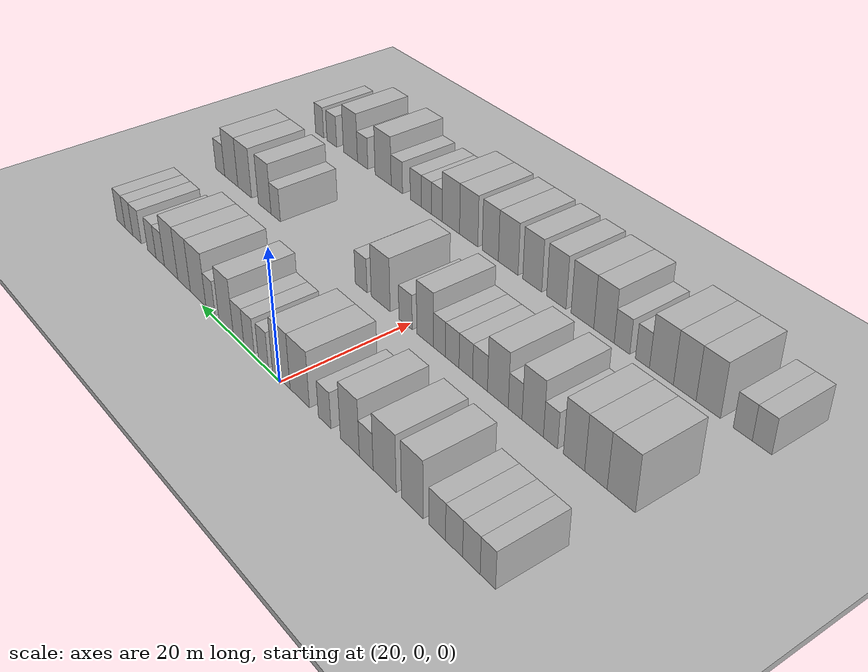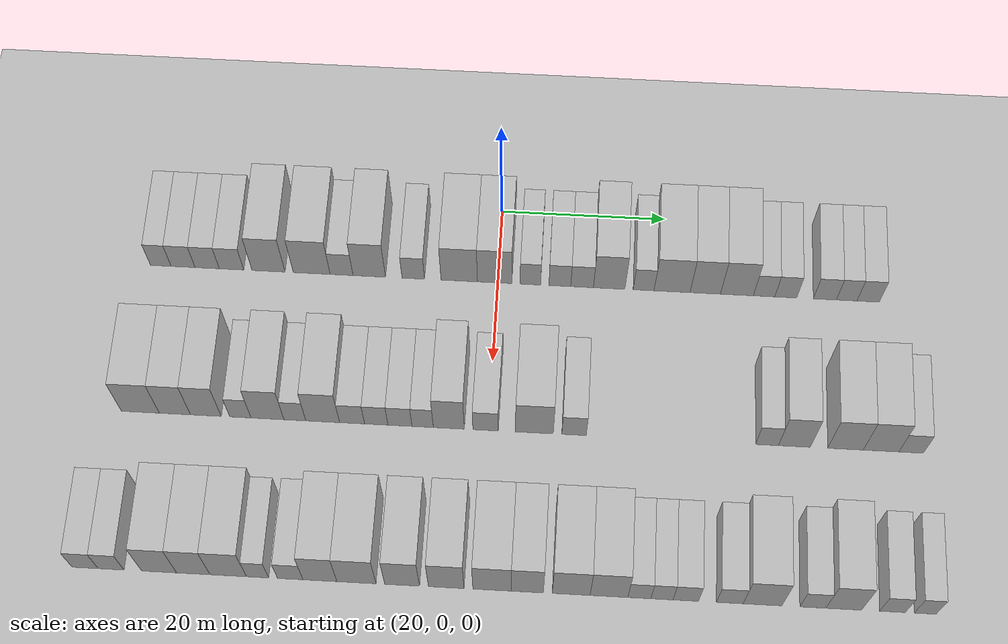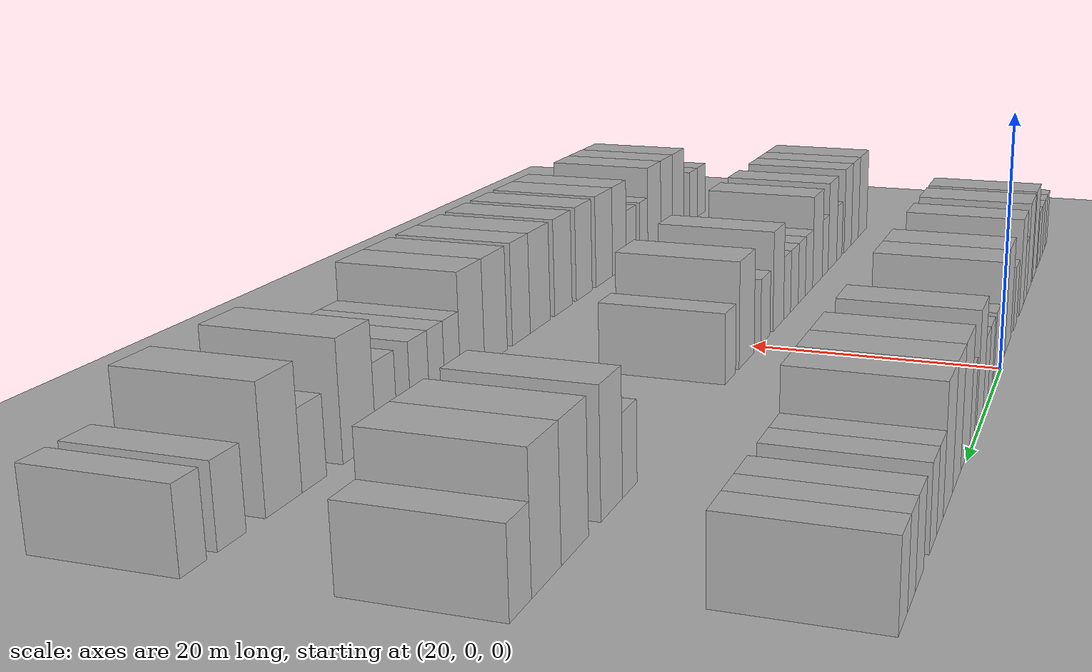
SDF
<sdf version="1.6">
 <world name="default">
  <include><name>ground_plane_1</name><uri>model://HANNAS_ground_plane</uri></include>
  <include>
   <name>ground_plane_2</name>
   <uri>model://HANNAS_ground_plane</uri>
   <pose>100 0 0  0 0 0</pose>
  </include>
  <model name="building_46">
   <static>1</static>
   <pose>25.0000 -40.8660 0 0.000000 0.000000 0.000000</pose>
   <link name="link">
    <pose>0 0 3.00 0 0 0</pose>
    <collision name="collision"><geometry><box><size>10.0000 2.5116 6.0000</size></box></geometry></collision>
    <visual name="visual">
     <cast_shadows>0</cast_shadows>
     <geometry><box><size>10.0000 2.5116 6.0000</size></box></geometry>
     <material>
      <script>
       <uri>model://HANNAS_wall/materials/scripts</uri>
       <uri>model://HANNAS_wall/materials/textures</uri>
       <name>vrc/HANNAS_wall</name>
      </script>
     </material>
    </visual>
   </link>
  </model>
  <model name="building_47">
   <static>1</static>
   <pose>25.0000 -38.1492 0 0.000000 0.000000 0.000000</pose>
   <link name="link">
    <pose>0 0 3.00 0 0 0</pose>
    <collision name="collision"><geometry><box><size>10.0000 2.9220 6.0000</size></box></geometry></collision>
    <visual name="visual">
     <cast_shadows>0</cast_shadows>
     <geometry><box><size>10.0000 2.9220 6.0000</size></box></geometry>
     <material>
      <script>
       <uri>model://HANNAS_wall/materials/scripts</uri>
       <uri>model://HANNAS_wall/materials/textures</uri>
       <name>vrc/HANNAS_wall</name>
      </script>
     </material>
    </visual>
   </link>
  </model>
  <model name="building_48">
   <static>1</static>
   <pose>25.0000 -35.2153 0 0.000000 0.000000 0.000000</pose>
   <link name="link">
    <pose>0 0 3.00 0 0 0</pose>
    <collision name="collision"><geometry><box><size>10.0000 2.9459 6.0000</size></box></geometry></collision>
    <visual name="visual">
     <cast_shadows>0</cast_shadows>
     <geometry><box><size>10.0000 2.9459 6.0000</size></box></geometry>
     <material>
      <script>
       <uri>model://HANNAS_wall/materials/scripts</uri>
       <uri>model://HANNAS_wall/materials/textures</uri>
       <name>vrc/HANNAS_wall</name>
      </script>
     </material>
    </visual>
   </link>
  </model>
  <model name="building_49">
   <static>1</static>
   <pose>25.0000 -32.2493 0 0.000000 0.000000 0.000000</pose>
   <link name="link">
    <pose>0 0 3.00 0 0 0</pose>
    <collision name="collision"><geometry><box><size>10.0000 2.9861 6.0000</size></box></geometry></collision>
    <visual name="visual">
     <cast_shadows>0</cast_shadows>
     <geometry><box><size>10.0000 2.9861 6.0000</size></box></geometry>
     <material>
      <script>
       <uri>model://HANNAS_wall/materials/scripts</uri>
       <uri>model://HANNAS_wall/materials/textures</uri>
       <name>vrc/HANNAS_wall</name>
      </script>
     </material>
    </visual>
   </link>
  </model>
  <model name="building_50">
   <static>1</static>
   <pose>25.0000 -27.7480 0 0.000000 0.000000 0.000000</pose>
   <link name="link">
    <pose>0 0 4.50 0 0 0</pose>
    <collision name="collision"><geometry><box><size>10.0000 4.0165 9.0000</size></box></geometry></collision>
    <visual name="visual">
     <cast_shadows>0</cast_shadows>
     <geometry><box><size>10.0000 4.0165 9.0000</size></box></geometry>
     <material>
      <script>
       <uri>model://HANNAS_wall/materials/scripts</uri>
       <uri>model://HANNAS_wall/materials/textures</uri>
       <name>vrc/HANNAS_wall</name>
      </script>
     </material>
    </visual>
   </link>
  </model>
  <model name="building_51">
   <static>1</static>
   <pose>25.0000 -22.5048 0 0.000000 0.000000 0.000000</pose>
   <link name="link">
    <pose>0 0 4.50 0 0 0</pose>
    <collision name="collision"><geometry><box><size>10.0000 4.4698 9.0000</size></box></geometry></collision>
    <visual name="visual">
     <cast_shadows>0</cast_shadows>
     <geometry><box><size>10.0000 4.4698 9.0000</size></box></geometry>
     <material>
      <script>
       <uri>model://HANNAS_wall/materials/scripts</uri>
       <uri>model://HANNAS_wall/materials/textures</uri>
       <name>vrc/HANNAS_wall</name>
      </script>
     </material>
    </visual>
   </link>
  </model>
  <model name="building_52">
   <static>1</static>
   <pose>25.0000 -18.8796 0 0.000000 0.000000 0.000000</pose>
   <link name="link">
    <pose>0 0 3.00 0 0 0</pose>
    <collision name="collision"><geometry><box><size>10.0000 2.7806 6.0000</size></box></geometry></collision>
    <visual name="visual">
     <cast_shadows>0</cast_shadows>
     <geometry><box><size>10.0000 2.7806 6.0000</size></box></geometry>
     <material>
      <script>
       <uri>model://HANNAS_wall/materials/scripts</uri>
       <uri>model://HANNAS_wall/materials/textures</uri>
       <name>vrc/HANNAS_wall</name>
      </script>
     </material>
    </visual>
   </link>
  </model>
  <model name="building_53">
   <static>1</static>
   <pose>25.0000 -15.5178 0 0.000000 0.000000 0.000000</pose>
   <link name="link">
    <pose>0 0 4.50 0 0 0</pose>
    <collision name="collision"><geometry><box><size>10.0000 3.9430 9.0000</size></box></geometry></collision>
    <visual name="visual">
     <cast_shadows>0</cast_shadows>
     <geometry><box><size>10.0000 3.9430 9.0000</size></box></geometry>
     <material>
      <script>
       <uri>model://HANNAS_wall/materials/scripts</uri>
       <uri>model://HANNAS_wall/materials/textures</uri>
       <name>vrc/HANNAS_wall</name>
      </script>
     </material>
    </visual>
   </link>
  </model>
  <model name="building_54">
   <static>1</static>
   <pose>25.0000 -10.1851 0 0.000000 0.000000 0.000000</pose>
   <link name="link">
    <pose>0 0 3.00 0 0 0</pose>
    <collision name="collision"><geometry><box><size>10.0000 2.7223 6.0000</size></box></geometry></collision>
    <visual name="visual">
     <cast_shadows>0</cast_shadows>
     <geometry><box><size>10.0000 2.7223 6.0000</size></box></geometry>
     <material>
      <script>
       <uri>model://HANNAS_wall/materials/scripts</uri>
       <uri>model://HANNAS_wall/materials/textures</uri>
       <name>vrc/HANNAS_wall</name>
      </script>
     </material>
    </visual>
   </link>
  </model>
  <model name="building_55">
   <static>1</static>
   <pose>25.0000 -4.6229 0 0.000000 0.000000 0.000000</pose>
   <link name="link">
    <pose>0 0 4.50 0 0 0</pose>
    <collision name="collision"><geometry><box><size>10.0000 4.4022 9.0000</size></box></geometry></collision>
    <visual name="visual">
     <cast_shadows>0</cast_shadows>
     <geometry><box><size>10.0000 4.4022 9.0000</size></box></geometry>
     <material>
      <script>
       <uri>model://HANNAS_wall/materials/scripts</uri>
       <uri>model://HANNAS_wall/materials/textures</uri>
       <name>vrc/HANNAS_wall</name>
      </script>
     </material>
    </visual>
   </link>
  </model>
  <model name="building_56">
   <static>1</static>
   <pose>25.0000 -0.3468 0 0.000000 0.000000 0.000000</pose>
   <link name="link">
    <pose>0 0 4.50 0 0 0</pose>
    <collision name="collision"><geometry><box><size>10.0000 4.1499 9.0000</size></box></geometry></collision>
    <visual name="visual">
     <cast_shadows>0</cast_shadows>
     <geometry><box><size>10.0000 4.1499 9.0000</size></box></geometry>
     <material>
      <script>
       <uri>model://HANNAS_wall/materials/scripts</uri>
       <uri>model://HANNAS_wall/materials/textures</uri>
       <name>vrc/HANNAS_wall</name>
      </script>
     </material>
    </visual>
   </link>
  </model>
  <model name="building_57">
   <static>1</static>
   <pose>25.0000 3.9664 0 0.000000 0.000000 0.000000</pose>
   <link name="link">
    <pose>0 0 3.00 0 0 0</pose>
    <collision name="collision"><geometry><box><size>10.0000 2.4766 6.0000</size></box></geometry></collision>
    <visual name="visual">
     <cast_shadows>0</cast_shadows>
     <geometry><box><size>10.0000 2.4766 6.0000</size></box></geometry>
     <material>
      <script>
       <uri>model://HANNAS_wall/materials/scripts</uri>
       <uri>model://HANNAS_wall/materials/textures</uri>
       <name>vrc/HANNAS_wall</name>
      </script>
     </material>
    </visual>
   </link>
  </model>
  <model name="building_58">
   <static>1</static>
   <pose>25.0000 7.5182 0 0.000000 0.000000 0.000000</pose>
   <link name="link">
    <pose>0 0 3.00 0 0 0</pose>
    <collision name="collision"><geometry><box><size>10.0000 2.6270 6.0000</size></box></geometry></collision>
    <visual name="visual">
     <cast_shadows>0</cast_shadows>
     <geometry><box><size>10.0000 2.6270 6.0000</size></box></geometry>
     <material>
      <script>
       <uri>model://HANNAS_wall/materials/scripts</uri>
       <uri>model://HANNAS_wall/materials/textures</uri>
       <name>vrc/HANNAS_wall</name>
      </script>
     </material>
    </visual>
   </link>
  </model>
  <model name="building_59">
   <static>1</static>
   <pose>25.0000 10.2033 0 0.000000 0.000000 0.000000</pose>
   <link name="link">
    <pose>0 0 3.00 0 0 0</pose>
    <collision name="collision"><geometry><box><size>10.0000 2.7432 6.0000</size></box></geometry></collision>
    <visual name="visual">
     <cast_shadows>0</cast_shadows>
     <geometry><box><size>10.0000 2.7432 6.0000</size></box></geometry>
     <material>
      <script>
       <uri>model://HANNAS_wall/materials/scripts</uri>
       <uri>model://HANNAS_wall/materials/textures</uri>
       <name>vrc/HANNAS_wall</name>
      </script>
     </material>
    </visual>
   </link>
  </model>
  <model name="building_60">
   <static>1</static>
   <pose>25.0000 13.4718 0 0.000000 0.000000 0.000000</pose>
   <link name="link">
    <pose>0 0 4.50 0 0 0</pose>
    <collision name="collision"><geometry><box><size>10.0000 3.7939 9.0000</size></box></geometry></collision>
    <visual name="visual">
     <cast_shadows>0</cast_shadows>
     <geometry><box><size>10.0000 3.7939 9.0000</size></box></geometry>
     <material>
      <script>
       <uri>model://HANNAS_wall/materials/scripts</uri>
       <uri>model://HANNAS_wall/materials/textures</uri>
       <name>vrc/HANNAS_wall</name>
      </script>
     </material>
    </visual>
   </link>
  </model>
  <model name="building_61">
   <static>1</static>
   <pose>25.0000 17.6209 0 0.000000 0.000000 0.000000</pose>
   <link name="link">
    <pose>0 0 3.00 0 0 0</pose>
    <collision name="collision"><geometry><box><size>10.0000 2.5042 6.0000</size></box></geometry></collision>
    <visual name="visual">
     <cast_shadows>0</cast_shadows>
     <geometry><box><size>10.0000 2.5042 6.0000</size></box></geometry>
     <material>
      <script>
       <uri>model://HANNAS_wall/materials/scripts</uri>
       <uri>model://HANNAS_wall/materials/textures</uri>
       <name>vrc/HANNAS_wall</name>
      </script>
     </material>
    </visual>
   </link>
  </model>
  <model name="building_62">
   <static>1</static>
   <pose>25.0000 21.0425 0 0.000000 0.000000 0.000000</pose>
   <link name="link">
    <pose>0 0 4.50 0 0 0</pose>
    <collision name="collision"><geometry><box><size>10.0000 4.3391 9.0000</size></box></geometry></collision>
    <visual name="visual">
     <cast_shadows>0</cast_shadows>
     <geometry><box><size>10.0000 4.3391 9.0000</size></box></geometry>
     <material>
      <script>
       <uri>model://HANNAS_wall/materials/scripts</uri>
       <uri>model://HANNAS_wall/materials/textures</uri>
       <name>vrc/HANNAS_wall</name>
      </script>
     </material>
    </visual>
   </link>
  </model>
  <model name="building_63">
   <static>1</static>
   <pose>25.0000 25.0427 0 0.000000 0.000000 0.000000</pose>
   <link name="link">
    <pose>0 0 4.50 0 0 0</pose>
    <collision name="collision"><geometry><box><size>10.0000 3.6613 9.0000</size></box></geometry></collision>
    <visual name="visual">
     <cast_shadows>0</cast_shadows>
     <geometry><box><size>10.0000 3.6613 9.0000</size></box></geometry>
     <material>
      <script>
       <uri>model://HANNAS_wall/materials/scripts</uri>
       <uri>model://HANNAS_wall/materials/textures</uri>
       <name>vrc/HANNAS_wall</name>
      </script>
     </material>
    </visual>
   </link>
  </model>
  <model name="building_64">
   <static>1</static>
   <pose>25.0000 28.8501 0 0.000000 0.000000 0.000000</pose>
   <link name="link">
    <pose>0 0 4.50 0 0 0</pose>
    <collision name="collision"><geometry><box><size>10.0000 3.9537 9.0000</size></box></geometry></collision>
    <visual name="visual">
     <cast_shadows>0</cast_shadows>
     <geometry><box><size>10.0000 3.9537 9.0000</size></box></geometry>
     <material>
      <script>
       <uri>model://HANNAS_wall/materials/scripts</uri>
       <uri>model://HANNAS_wall/materials/textures</uri>
       <name>vrc/HANNAS_wall</name>
      </script>
     </material>
    </visual>
   </link>
  </model>
  <model name="building_65">
   <static>1</static>
   <pose>25.0000 32.1144 0 0.000000 0.000000 0.000000</pose>
   <link name="link">
    <pose>0 0 3.00 0 0 0</pose>
    <collision name="collision"><geometry><box><size>10.0000 2.5749 6.0000</size></box></geometry></collision>
    <visual name="visual">
     <cast_shadows>0</cast_shadows>
     <geometry><box><size>10.0000 2.5749 6.0000</size></box></geometry>
     <material>
      <script>
       <uri>model://HANNAS_wall/materials/scripts</uri>
       <uri>model://HANNAS_wall/materials/textures</uri>
       <name>vrc/HANNAS_wall</name>
      </script>
     </material>
    </visual>
   </link>
  </model>
  <model name="building_66">
   <static>1</static>
   <pose>25.0000 34.7134 0 0.000000 0.000000 0.000000</pose>
   <link name="link">
    <pose>0 0 3.00 0 0 0</pose>
    <collision name="collision"><geometry><box><size>10.0000 2.6231 6.0000</size></box></geometry></collision>
    <visual name="visual">
     <cast_shadows>0</cast_shadows>
     <geometry><box><size>10.0000 2.6231 6.0000</size></box></geometry>
     <material>
      <script>
       <uri>model://HANNAS_wall/materials/scripts</uri>
       <uri>model://HANNAS_wall/materials/textures</uri>
       <name>vrc/HANNAS_wall</name>
      </script>
     </material>
    </visual>
   </link>
  </model>
  <model name="building_67">
   <static>1</static>
   <pose>25.0000 39.4012 0 0.000000 0.000000 0.000000</pose>
   <link name="link">
    <pose>0 0 3.00 0 0 0</pose>
    <collision name="collision"><geometry><box><size>10.0000 2.7525 6.0000</size></box></geometry></collision>
    <visual name="visual">
     <cast_shadows>0</cast_shadows>
     <geometry><box><size>10.0000 2.7525 6.0000</size></box></geometry>
     <material>
      <script>
       <uri>model://HANNAS_wall/materials/scripts</uri>
       <uri>model://HANNAS_wall/materials/textures</uri>
       <name>vrc/HANNAS_wall</name>
      </script>
     </material>
    </visual>
   </link>
  </model>
  <model name="building_68">
   <static>1</static>
   <pose>25.0000 42.0086 0 0.000000 0.000000 0.000000</pose>
   <link name="link">
    <pose>0 0 3.00 0 0 0</pose>
    <collision name="collision"><geometry><box><size>10.0000 2.4623 6.0000</size></box></geometry></collision>
    <visual name="visual">
     <cast_shadows>0</cast_shadows>
     <geometry><box><size>10.0000 2.4623 6.0000</size></box></geometry>
     <material>
      <script>
       <uri>model://HANNAS_wall/materials/scripts</uri>
       <uri>model://HANNAS_wall/materials/textures</uri>
       <name>vrc/HANNAS_wall</name>
      </script>
     </material>
    </visual>
   </link>
  </model>
  <model name="building_69">
   <static>1</static>
   <pose>25.0000 44.5900 0 0.000000 0.000000 0.000000</pose>
   <link name="link">
    <pose>0 0 3.00 0 0 0</pose>
    <collision name="collision"><geometry><box><size>10.0000 2.7006 6.0000</size></box></geometry></collision>
    <visual name="visual">
     <cast_shadows>0</cast_shadows>
     <geometry><box><size>10.0000 2.7006 6.0000</size></box></geometry>
     <material>
      <script>
       <uri>model://HANNAS_wall/materials/scripts</uri>
       <uri>model://HANNAS_wall/materials/textures</uri>
       <name>vrc/HANNAS_wall</name>
      </script>
     </material>
    </visual>
   </link>
  </model>
  <model name="building_158">
   <static>1</static>
   <pose>44.0000 -40.7082 0 0.000000 0.000000 0.000000</pose>
   <link name="link">
    <pose>0 0 4.50 0 0 0</pose>
    <collision name="collision"><geometry><box><size>10.0000 4.4553 9.0000</size></box></geometry></collision>
    <visual name="visual">
     <cast_shadows>0</cast_shadows>
     <geometry><box><size>10.0000 4.4553 9.0000</size></box></geometry>
     <material>
      <script>
       <uri>model://HANNAS_wall/materials/scripts</uri>
       <uri>model://HANNAS_wall/materials/textures</uri>
       <name>vrc/HANNAS_wall</name>
      </script>
     </material>
    </visual>
   </link>
  </model>
  <model name="building_159">
   <static>1</static>
   <pose>44.0000 -36.6401 0 0.000000 0.000000 0.000000</pose>
   <link name="link">
    <pose>0 0 4.50 0 0 0</pose>
    <collision name="collision"><geometry><box><size>10.0000 3.6810 9.0000</size></box></geometry></collision>
    <visual name="visual">
     <cast_shadows>0</cast_shadows>
     <geometry><box><size>10.0000 3.6810 9.0000</size></box></geometry>
     <material>
      <script>
       <uri>model://HANNAS_wall/materials/scripts</uri>
       <uri>model://HANNAS_wall/materials/textures</uri>
       <name>vrc/HANNAS_wall</name>
      </script>
     </material>
    </visual>
   </link>
  </model>
  <model name="building_160">
   <static>1</static>
   <pose>44.0000 -32.9985 0 0.000000 0.000000 0.000000</pose>
   <link name="link">
    <pose>0 0 4.50 0 0 0</pose>
    <collision name="collision"><geometry><box><size>10.0000 3.6022 9.0000</size></box></geometry></collision>
    <visual name="visual">
     <cast_shadows>0</cast_shadows>
     <geometry><box><size>10.0000 3.6022 9.0000</size></box></geometry>
     <material>
      <script>
       <uri>model://HANNAS_wall/materials/scripts</uri>
       <uri>model://HANNAS_wall/materials/textures</uri>
       <name>vrc/HANNAS_wall</name>
      </script>
     </material>
    </visual>
   </link>
  </model>
  <model name="building_161">
   <static>1</static>
   <pose>44.0000 -28.9535 0 0.000000 0.000000 0.000000</pose>
   <link name="link">
    <pose>0 0 3.00 0 0 0</pose>
    <collision name="collision"><geometry><box><size>10.0000 2.4878 6.0000</size></box></geometry></collision>
    <visual name="visual">
     <cast_shadows>0</cast_shadows>
     <geometry><box><size>10.0000 2.4878 6.0000</size></box></geometry>
     <material>
      <script>
       <uri>model://HANNAS_wall/materials/scripts</uri>
       <uri>model://HANNAS_wall/materials/textures</uri>
       <name>vrc/HANNAS_wall</name>
      </script>
     </material>
    </visual>
   </link>
  </model>
  <model name="building_162">
   <static>1</static>
   <pose>44.0000 -25.7793 0 0.000000 0.000000 0.000000</pose>
   <link name="link">
    <pose>0 0 4.50 0 0 0</pose>
    <collision name="collision"><geometry><box><size>10.0000 3.8607 9.0000</size></box></geometry></collision>
    <visual name="visual">
     <cast_shadows>0</cast_shadows>
     <geometry><box><size>10.0000 3.8607 9.0000</size></box></geometry>
     <material>
      <script>
       <uri>model://HANNAS_wall/materials/scripts</uri>
       <uri>model://HANNAS_wall/materials/textures</uri>
       <name>vrc/HANNAS_wall</name>
      </script>
     </material>
    </visual>
   </link>
  </model>
  <model name="building_163">
   <static>1</static>
   <pose>44.0000 -22.5672 0 0.000000 0.000000 0.000000</pose>
   <link name="link">
    <pose>0 0 3.00 0 0 0</pose>
    <collision name="collision"><geometry><box><size>10.0000 2.5634 6.0000</size></box></geometry></collision>
    <visual name="visual">
     <cast_shadows>0</cast_shadows>
     <geometry><box><size>10.0000 2.5634 6.0000</size></box></geometry>
     <material>
      <script>
       <uri>model://HANNAS_wall/materials/scripts</uri>
       <uri>model://HANNAS_wall/materials/textures</uri>
       <name>vrc/HANNAS_wall</name>
      </script>
     </material>
    </visual>
   </link>
  </model>
  <model name="building_164">
   <static>1</static>
   <pose>44.0000 -19.3072 0 0.000000 0.000000 0.000000</pose>
   <link name="link">
    <pose>0 0 4.50 0 0 0</pose>
    <collision name="collision"><geometry><box><size>10.0000 3.9565 9.0000</size></box></geometry></collision>
    <visual name="visual">
     <cast_shadows>0</cast_shadows>
     <geometry><box><size>10.0000 3.9565 9.0000</size></box></geometry>
     <material>
      <script>
       <uri>model://HANNAS_wall/materials/scripts</uri>
       <uri>model://HANNAS_wall/materials/textures</uri>
       <name>vrc/HANNAS_wall</name>
      </script>
     </material>
    </visual>
   </link>
  </model>
  <model name="building_165">
   <static>1</static>
   <pose>44.0000 -15.8691 0 0.000000 0.000000 0.000000</pose>
   <link name="link">
    <pose>0 0 3.00 0 0 0</pose>
    <collision name="collision"><geometry><box><size>10.0000 2.9197 6.0000</size></box></geometry></collision>
    <visual name="visual">
     <cast_shadows>0</cast_shadows>
     <geometry><box><size>10.0000 2.9197 6.0000</size></box></geometry>
     <material>
      <script>
       <uri>model://HANNAS_wall/materials/scripts</uri>
       <uri>model://HANNAS_wall/materials/textures</uri>
       <name>vrc/HANNAS_wall</name>
      </script>
     </material>
    </visual>
   </link>
  </model>
  <model name="building_166">
   <static>1</static>
   <pose>44.0000 -13.0458 0 0.000000 0.000000 0.000000</pose>
   <link name="link">
    <pose>0 0 3.00 0 0 0</pose>
    <collision name="collision"><geometry><box><size>10.0000 2.7271 6.0000</size></box></geometry></collision>
    <visual name="visual">
     <cast_shadows>0</cast_shadows>
     <geometry><box><size>10.0000 2.7271 6.0000</size></box></geometry>
     <material>
      <script>
       <uri>model://HANNAS_wall/materials/scripts</uri>
       <uri>model://HANNAS_wall/materials/textures</uri>
       <name>vrc/HANNAS_wall</name>
      </script>
     </material>
    </visual>
   </link>
  </model>
  <model name="building_167">
   <static>1</static>
   <pose>44.0000 -10.2778 0 0.000000 0.000000 0.000000</pose>
   <link name="link">
    <pose>0 0 3.00 0 0 0</pose>
    <collision name="collision"><geometry><box><size>10.0000 2.8089 6.0000</size></box></geometry></collision>
    <visual name="visual">
     <cast_shadows>0</cast_shadows>
     <geometry><box><size>10.0000 2.8089 6.0000</size></box></geometry>
     <material>
      <script>
       <uri>model://HANNAS_wall/materials/scripts</uri>
       <uri>model://HANNAS_wall/materials/textures</uri>
       <name>vrc/HANNAS_wall</name>
      </script>
     </material>
    </visual>
   </link>
  </model>
  <model name="building_168">
   <static>1</static>
   <pose>44.0000 -7.6267 0 0.000000 0.000000 0.000000</pose>
   <link name="link">
    <pose>0 0 3.00 0 0 0</pose>
    <collision name="collision"><geometry><box><size>10.0000 2.4932 6.0000</size></box></geometry></collision>
    <visual name="visual">
     <cast_shadows>0</cast_shadows>
     <geometry><box><size>10.0000 2.4932 6.0000</size></box></geometry>
     <material>
      <script>
       <uri>model://HANNAS_wall/materials/scripts</uri>
       <uri>model://HANNAS_wall/materials/textures</uri>
       <name>vrc/HANNAS_wall</name>
      </script>
     </material>
    </visual>
   </link>
  </model>
  <model name="building_169">
   <static>1</static>
   <pose>44.0000 -4.5736 0 0.000000 0.000000 0.000000</pose>
   <link name="link">
    <pose>0 0 4.50 0 0 0</pose>
    <collision name="collision"><geometry><box><size>10.0000 3.6130 9.0000</size></box></geometry></collision>
    <visual name="visual">
     <cast_shadows>0</cast_shadows>
     <geometry><box><size>10.0000 3.6130 9.0000</size></box></geometry>
     <material>
      <script>
       <uri>model://HANNAS_wall/materials/scripts</uri>
       <uri>model://HANNAS_wall/materials/textures</uri>
       <name>vrc/HANNAS_wall</name>
      </script>
     </material>
    </visual>
   </link>
  </model>
  <model name="building_170">
   <static>1</static>
   <pose>44.0000 -0.2909 0 0.000000 0.000000 0.000000</pose>
   <link name="link">
    <pose>0 0 3.00 0 0 0</pose>
    <collision name="collision"><geometry><box><size>10.0000 2.9525 6.0000</size></box></geometry></collision>
    <visual name="visual">
     <cast_shadows>0</cast_shadows>
     <geometry><box><size>10.0000 2.9525 6.0000</size></box></geometry>
     <material>
      <script>
       <uri>model://HANNAS_wall/materials/scripts</uri>
       <uri>model://HANNAS_wall/materials/textures</uri>
       <name>vrc/HANNAS_wall</name>
      </script>
     </material>
    </visual>
   </link>
  </model>
  <model name="building_171">
   <static>1</static>
   <pose>44.0000 5.3849 0 0.000000 0.000000 0.000000</pose>
   <link name="link">
    <pose>0 0 4.50 0 0 0</pose>
    <collision name="collision"><geometry><box><size>10.0000 4.3991 9.0000</size></box></geometry></collision>
    <visual name="visual">
     <cast_shadows>0</cast_shadows>
     <geometry><box><size>10.0000 4.3991 9.0000</size></box></geometry>
     <material>
      <script>
       <uri>model://HANNAS_wall/materials/scripts</uri>
       <uri>model://HANNAS_wall/materials/textures</uri>
       <name>vrc/HANNAS_wall</name>
      </script>
     </material>
    </visual>
   </link>
  </model>
  <model name="building_172">
   <static>1</static>
   <pose>44.0000 10.0025 0 0.000000 0.000000 0.000000</pose>
   <link name="link">
    <pose>0 0 3.00 0 0 0</pose>
    <collision name="collision"><geometry><box><size>10.0000 2.8360 6.0000</size></box></geometry></collision>
    <visual name="visual">
     <cast_shadows>0</cast_shadows>
     <geometry><box><size>10.0000 2.8360 6.0000</size></box></geometry>
     <material>
      <script>
       <uri>model://HANNAS_wall/materials/scripts</uri>
       <uri>model://HANNAS_wall/materials/textures</uri>
       <name>vrc/HANNAS_wall</name>
      </script>
     </material>
    </visual>
   </link>
  </model>
  <model name="building_173">
   <static>1</static>
   <pose>44.0000 32.3934 0 0.000000 0.000000 0.000000</pose>
   <link name="link">
    <pose>0 0 3.00 0 0 0</pose>
    <collision name="collision"><geometry><box><size>10.0000 2.6486 6.0000</size></box></geometry></collision>
    <visual name="visual">
     <cast_shadows>0</cast_shadows>
     <geometry><box><size>10.0000 2.6486 6.0000</size></box></geometry>
     <material>
      <script>
       <uri>model://HANNAS_wall/materials/scripts</uri>
       <uri>model://HANNAS_wall/materials/textures</uri>
       <name>vrc/HANNAS_wall</name>
      </script>
     </material>
    </visual>
   </link>
  </model>
  <model name="building_174">
   <static>1</static>
   <pose>44.0000 35.5699 0 0.000000 0.000000 0.000000</pose>
   <link name="link">
    <pose>0 0 4.50 0 0 0</pose>
    <collision name="collision"><geometry><box><size>10.0000 3.7043 9.0000</size></box></geometry></collision>
    <visual name="visual">
     <cast_shadows>0</cast_shadows>
     <geometry><box><size>10.0000 3.7043 9.0000</size></box></geometry>
     <material>
      <script>
       <uri>model://HANNAS_wall/materials/scripts</uri>
       <uri>model://HANNAS_wall/materials/textures</uri>
       <name>vrc/HANNAS_wall</name>
      </script>
     </material>
    </visual>
   </link>
  </model>
  <model name="building_175">
   <static>1</static>
   <pose>44.0000 41.4793 0 0.000000 0.000000 0.000000</pose>
   <link name="link">
    <pose>0 0 4.50 0 0 0</pose>
    <collision name="collision"><geometry><box><size>10.0000 4.1145 9.0000</size></box></geometry></collision>
    <visual name="visual">
     <cast_shadows>0</cast_shadows>
     <geometry><box><size>10.0000 4.1145 9.0000</size></box></geometry>
     <material>
      <script>
       <uri>model://HANNAS_wall/materials/scripts</uri>
       <uri>model://HANNAS_wall/materials/textures</uri>
       <name>vrc/HANNAS_wall</name>
      </script>
     </material>
    </visual>
   </link>
  </model>
  <model name="building_176">
   <static>1</static>
   <pose>44.0000 45.5878 0 0.000000 0.000000 0.000000</pose>
   <link name="link">
    <pose>0 0 4.50 0 0 0</pose>
    <collision name="collision"><geometry><box><size>10.0000 4.1025 9.0000</size></box></geometry></collision>
    <visual name="visual">
     <cast_shadows>0</cast_shadows>
     <geometry><box><size>10.0000 4.1025 9.0000</size></box></geometry>
     <material>
      <script>
       <uri>model://HANNAS_wall/materials/scripts</uri>
       <uri>model://HANNAS_wall/materials/textures</uri>
       <name>vrc/HANNAS_wall</name>
      </script>
     </material>
    </visual>
   </link>
  </model>
  <model name="building_177">
   <static>1</static>
   <pose>44.0000 49.0592 0 0.000000 0.000000 0.000000</pose>
   <link name="link">
    <pose>0 0 3.00 0 0 0</pose>
    <collision name="collision"><geometry><box><size>10.0000 2.8403 6.0000</size></box></geometry></collision>
    <visual name="visual">
     <cast_shadows>0</cast_shadows>
     <geometry><box><size>10.0000 2.8403 6.0000</size></box></geometry>
     <material>
      <script>
       <uri>model://HANNAS_wall/materials/scripts</uri>
       <uri>model://HANNAS_wall/materials/textures</uri>
       <name>vrc/HANNAS_wall</name>
      </script>
     </material>
    </visual>
   </link>
  </model>
  <model name="building_271">
   <static>1</static>
   <pose>63.0000 -44.3009 0 0.000000 0.000000 0.000000</pose>
   <link name="link">
    <pose>0 0 3.00 0 0 0</pose>
    <collision name="collision"><geometry><box><size>10.0000 2.9504 6.0000</size></box></geometry></collision>
    <visual name="visual">
     <cast_shadows>0</cast_shadows>
     <geometry><box><size>10.0000 2.9504 6.0000</size></box></geometry>
     <material>
      <script>
       <uri>model://HANNAS_wall/materials/scripts</uri>
       <uri>model://HANNAS_wall/materials/textures</uri>
       <name>vrc/HANNAS_wall</name>
      </script>
     </material>
    </visual>
   </link>
  </model>
  <model name="building_272">
   <static>1</static>
   <pose>63.0000 -41.3636 0 0.000000 0.000000 0.000000</pose>
   <link name="link">
    <pose>0 0 3.00 0 0 0</pose>
    <collision name="collision"><geometry><box><size>10.0000 2.9243 6.0000</size></box></geometry></collision>
    <visual name="visual">
     <cast_shadows>0</cast_shadows>
     <geometry><box><size>10.0000 2.9243 6.0000</size></box></geometry>
     <material>
      <script>
       <uri>model://HANNAS_wall/materials/scripts</uri>
       <uri>model://HANNAS_wall/materials/textures</uri>
       <name>vrc/HANNAS_wall</name>
      </script>
     </material>
    </visual>
   </link>
  </model>
  <model name="building_273">
   <static>1</static>
   <pose>63.0000 -35.9196 0 0.000000 0.000000 0.000000</pose>
   <link name="link">
    <pose>0 0 4.50 0 0 0</pose>
    <collision name="collision"><geometry><box><size>10.0000 3.9636 9.0000</size></box></geometry></collision>
    <visual name="visual">
     <cast_shadows>0</cast_shadows>
     <geometry><box><size>10.0000 3.9636 9.0000</size></box></geometry>
     <material>
      <script>
       <uri>model://HANNAS_wall/materials/scripts</uri>
       <uri>model://HANNAS_wall/materials/textures</uri>
       <name>vrc/HANNAS_wall</name>
      </script>
     </material>
    </visual>
   </link>
  </model>
  <model name="building_274">
   <static>1</static>
   <pose>63.0000 -32.0493 0 0.000000 0.000000 0.000000</pose>
   <link name="link">
    <pose>0 0 4.50 0 0 0</pose>
    <collision name="collision"><geometry><box><size>10.0000 3.7772 9.0000</size></box></geometry></collision>
    <visual name="visual">
     <cast_shadows>0</cast_shadows>
     <geometry><box><size>10.0000 3.7772 9.0000</size></box></geometry>
     <material>
      <script>
       <uri>model://HANNAS_wall/materials/scripts</uri>
       <uri>model://HANNAS_wall/materials/textures</uri>
       <name>vrc/HANNAS_wall</name>
      </script>
     </material>
    </visual>
   </link>
  </model>
  <model name="building_275">
   <static>1</static>
   <pose>63.0000 -28.0996 0 0.000000 0.000000 0.000000</pose>
   <link name="link">
    <pose>0 0 4.50 0 0 0</pose>
    <collision name="collision"><geometry><box><size>10.0000 4.1220 9.0000</size></box></geometry></collision>
    <visual name="visual">
     <cast_shadows>0</cast_shadows>
     <geometry><box><size>10.0000 4.1220 9.0000</size></box></geometry>
     <material>
      <script>
       <uri>model://HANNAS_wall/materials/scripts</uri>
       <uri>model://HANNAS_wall/materials/textures</uri>
       <name>vrc/HANNAS_wall</name>
      </script>
     </material>
    </visual>
   </link>
  </model>
  <model name="building_276">
   <static>1</static>
   <pose>63.0000 -24.7920 0 0.000000 0.000000 0.000000</pose>
   <link name="link">
    <pose>0 0 3.00 0 0 0</pose>
    <collision name="collision"><geometry><box><size>10.0000 2.4933 6.0000</size></box></geometry></collision>
    <visual name="visual">
     <cast_shadows>0</cast_shadows>
     <geometry><box><size>10.0000 2.4933 6.0000</size></box></geometry>
     <material>
      <script>
       <uri>model://HANNAS_wall/materials/scripts</uri>
       <uri>model://HANNAS_wall/materials/textures</uri>
       <name>vrc/HANNAS_wall</name>
      </script>
     </material>
    </visual>
   </link>
  </model>
  <model name="building_277">
   <static>1</static>
   <pose>63.0000 -21.1151 0 0.000000 0.000000 0.000000</pose>
   <link name="link">
    <pose>0 0 3.00 0 0 0</pose>
    <collision name="collision"><geometry><box><size>10.0000 2.8604 6.0000</size></box></geometry></collision>
    <visual name="visual">
     <cast_shadows>0</cast_shadows>
     <geometry><box><size>10.0000 2.8604 6.0000</size></box></geometry>
     <material>
      <script>
       <uri>model://HANNAS_wall/materials/scripts</uri>
       <uri>model://HANNAS_wall/materials/textures</uri>
       <name>vrc/HANNAS_wall</name>
      </script>
     </material>
    </visual>
   </link>
  </model>
  <model name="building_278">
   <static>1</static>
   <pose>63.0000 -17.7704 0 0.000000 0.000000 0.000000</pose>
   <link name="link">
    <pose>0 0 4.50 0 0 0</pose>
    <collision name="collision"><geometry><box><size>10.0000 3.8291 9.0000</size></box></geometry></collision>
    <visual name="visual">
     <cast_shadows>0</cast_shadows>
     <geometry><box><size>10.0000 3.8291 9.0000</size></box></geometry>
     <material>
      <script>
       <uri>model://HANNAS_wall/materials/scripts</uri>
       <uri>model://HANNAS_wall/materials/textures</uri>
       <name>vrc/HANNAS_wall</name>
      </script>
     </material>
    </visual>
   </link>
  </model>
  <model name="building_279">
   <static>1</static>
   <pose>63.0000 -13.6573 0 0.000000 0.000000 0.000000</pose>
   <link name="link">
    <pose>0 0 4.50 0 0 0</pose>
    <collision name="collision"><geometry><box><size>10.0000 4.3971 9.0000</size></box></geometry></collision>
    <visual name="visual">
     <cast_shadows>0</cast_shadows>
     <geometry><box><size>10.0000 4.3971 9.0000</size></box></geometry>
     <material>
      <script>
       <uri>model://HANNAS_wall/materials/scripts</uri>
       <uri>model://HANNAS_wall/materials/textures</uri>
       <name>vrc/HANNAS_wall</name>
      </script>
     </material>
    </visual>
   </link>
  </model>
  <model name="building_280">
   <static>1</static>
   <pose>63.0000 -8.5059 0 0.000000 0.000000 0.000000</pose>
   <link name="link">
    <pose>0 0 4.50 0 0 0</pose>
    <collision name="collision"><geometry><box><size>10.0000 3.9056 9.0000</size></box></geometry></collision>
    <visual name="visual">
     <cast_shadows>0</cast_shadows>
     <geometry><box><size>10.0000 3.9056 9.0000</size></box></geometry>
     <material>
      <script>
       <uri>model://HANNAS_wall/materials/scripts</uri>
       <uri>model://HANNAS_wall/materials/textures</uri>
       <name>vrc/HANNAS_wall</name>
      </script>
     </material>
    </visual>
   </link>
  </model>
  <model name="building_281">
   <static>1</static>
   <pose>63.0000 -3.5567 0 0.000000 0.000000 0.000000</pose>
   <link name="link">
    <pose>0 0 4.50 0 0 0</pose>
    <collision name="collision"><geometry><box><size>10.0000 3.9929 9.0000</size></box></geometry></collision>
    <visual name="visual">
     <cast_shadows>0</cast_shadows>
     <geometry><box><size>10.0000 3.9929 9.0000</size></box></geometry>
     <material>
      <script>
       <uri>model://HANNAS_wall/materials/scripts</uri>
       <uri>model://HANNAS_wall/materials/textures</uri>
       <name>vrc/HANNAS_wall</name>
      </script>
     </material>
    </visual>
   </link>
  </model>
  <model name="building_282">
   <static>1</static>
   <pose>63.0000 1.5825 0 0.000000 0.000000 0.000000</pose>
   <link name="link">
    <pose>0 0 4.50 0 0 0</pose>
    <collision name="collision"><geometry><box><size>10.0000 4.2855 9.0000</size></box></geometry></collision>
    <visual name="visual">
     <cast_shadows>0</cast_shadows>
     <geometry><box><size>10.0000 4.2855 9.0000</size></box></geometry>
     <material>
      <script>
       <uri>model://HANNAS_wall/materials/scripts</uri>
       <uri>model://HANNAS_wall/materials/textures</uri>
       <name>vrc/HANNAS_wall</name>
      </script>
     </material>
    </visual>
   </link>
  </model>
  <model name="building_283">
   <static>1</static>
   <pose>63.0000 5.5296 0 0.000000 0.000000 0.000000</pose>
   <link name="link">
    <pose>0 0 4.50 0 0 0</pose>
    <collision name="collision"><geometry><box><size>10.0000 3.6086 9.0000</size></box></geometry></collision>
    <visual name="visual">
     <cast_shadows>0</cast_shadows>
     <geometry><box><size>10.0000 3.6086 9.0000</size></box></geometry>
     <material>
      <script>
       <uri>model://HANNAS_wall/materials/scripts</uri>
       <uri>model://HANNAS_wall/materials/textures</uri>
       <name>vrc/HANNAS_wall</name>
      </script>
     </material>
    </visual>
   </link>
  </model>
  <model name="building_284">
   <static>1</static>
   <pose>63.0000 10.4511 0 0.000000 0.000000 0.000000</pose>
   <link name="link">
    <pose>0 0 4.50 0 0 0</pose>
    <collision name="collision"><geometry><box><size>10.0000 4.2343 9.0000</size></box></geometry></collision>
    <visual name="visual">
     <cast_shadows>0</cast_shadows>
     <geometry><box><size>10.0000 4.2343 9.0000</size></box></geometry>
     <material>
      <script>
       <uri>model://HANNAS_wall/materials/scripts</uri>
       <uri>model://HANNAS_wall/materials/textures</uri>
       <name>vrc/HANNAS_wall</name>
      </script>
     </material>
    </visual>
   </link>
  </model>
  <model name="building_285">
   <static>1</static>
   <pose>63.0000 14.6779 0 0.000000 0.000000 0.000000</pose>
   <link name="link">
    <pose>0 0 4.50 0 0 0</pose>
    <collision name="collision"><geometry><box><size>10.0000 4.2193 9.0000</size></box></geometry></collision>
    <visual name="visual">
     <cast_shadows>0</cast_shadows>
     <geometry><box><size>10.0000 4.2193 9.0000</size></box></geometry>
     <material>
      <script>
       <uri>model://HANNAS_wall/materials/scripts</uri>
       <uri>model://HANNAS_wall/materials/textures</uri>
       <name>vrc/HANNAS_wall</name>
      </script>
     </material>
    </visual>
   </link>
  </model>
  <model name="building_286">
   <static>1</static>
   <pose>63.0000 18.0796 0 0.000000 0.000000 0.000000</pose>
   <link name="link">
    <pose>0 0 3.00 0 0 0</pose>
    <collision name="collision"><geometry><box><size>10.0000 2.5841 6.0000</size></box></geometry></collision>
    <visual name="visual">
     <cast_shadows>0</cast_shadows>
     <geometry><box><size>10.0000 2.5841 6.0000</size></box></geometry>
     <material>
      <script>
       <uri>model://HANNAS_wall/materials/scripts</uri>
       <uri>model://HANNAS_wall/materials/textures</uri>
       <name>vrc/HANNAS_wall</name>
      </script>
     </material>
    </visual>
   </link>
  </model>
  <model name="building_287">
   <static>1</static>
   <pose>63.0000 20.6042 0 0.000000 0.000000 0.000000</pose>
   <link name="link">
    <pose>0 0 3.00 0 0 0</pose>
    <collision name="collision"><geometry><box><size>10.0000 2.4650 6.0000</size></box></geometry></collision>
    <visual name="visual">
     <cast_shadows>0</cast_shadows>
     <geometry><box><size>10.0000 2.4650 6.0000</size></box></geometry>
     <material>
      <script>
       <uri>model://HANNAS_wall/materials/scripts</uri>
       <uri>model://HANNAS_wall/materials/textures</uri>
       <name>vrc/HANNAS_wall</name>
      </script>
     </material>
    </visual>
   </link>
  </model>
  <model name="building_288">
   <static>1</static>
   <pose>63.0000 23.2620 0 0.000000 0.000000 0.000000</pose>
   <link name="link">
    <pose>0 0 3.00 0 0 0</pose>
    <collision name="collision"><geometry><box><size>10.0000 2.8506 6.0000</size></box></geometry></collision>
    <visual name="visual">
     <cast_shadows>0</cast_shadows>
     <geometry><box><size>10.0000 2.8506 6.0000</size></box></geometry>
     <material>
      <script>
       <uri>model://HANNAS_wall/materials/scripts</uri>
       <uri>model://HANNAS_wall/materials/textures</uri>
       <name>vrc/HANNAS_wall</name>
      </script>
     </material>
    </visual>
   </link>
  </model>
  <model name="building_289">
   <static>1</static>
   <pose>63.0000 28.1749 0 0.000000 0.000000 0.000000</pose>
   <link name="link">
    <pose>0 0 3.00 0 0 0</pose>
    <collision name="collision"><geometry><box><size>10.0000 2.9751 6.0000</size></box></geometry></collision>
    <visual name="visual">
     <cast_shadows>0</cast_shadows>
     <geometry><box><size>10.0000 2.9751 6.0000</size></box></geometry>
     <material>
      <script>
       <uri>model://HANNAS_wall/materials/scripts</uri>
       <uri>model://HANNAS_wall/materials/textures</uri>
       <name>vrc/HANNAS_wall</name>
      </script>
     </material>
    </visual>
   </link>
  </model>
  <model name="building_290">
   <static>1</static>
   <pose>63.0000 31.8278 0 0.000000 0.000000 0.000000</pose>
   <link name="link">
    <pose>0 0 4.50 0 0 0</pose>
    <collision name="collision"><geometry><box><size>10.0000 4.3307 9.0000</size></box></geometry></collision>
    <visual name="visual">
     <cast_shadows>0</cast_shadows>
     <geometry><box><size>10.0000 4.3307 9.0000</size></box></geometry>
     <material>
      <script>
       <uri>model://HANNAS_wall/materials/scripts</uri>
       <uri>model://HANNAS_wall/materials/textures</uri>
       <name>vrc/HANNAS_wall</name>
      </script>
     </material>
    </visual>
   </link>
  </model>
  <model name="building_291">
   <static>1</static>
   <pose>63.0000 37.4377 0 0.000000 0.000000 0.000000</pose>
   <link name="link">
    <pose>0 0 3.00 0 0 0</pose>
    <collision name="collision"><geometry><box><size>10.0000 2.8891 6.0000</size></box></geometry></collision>
    <visual name="visual">
     <cast_shadows>0</cast_shadows>
     <geometry><box><size>10.0000 2.8891 6.0000</size></box></geometry>
     <material>
      <script>
       <uri>model://HANNAS_wall/materials/scripts</uri>
       <uri>model://HANNAS_wall/materials/textures</uri>
       <name>vrc/HANNAS_wall</name>
      </script>
     </material>
    </visual>
   </link>
  </model>
  <model name="building_292">
   <static>1</static>
   <pose>63.0000 40.8796 0 0.000000 0.000000 0.000000</pose>
   <link name="link">
    <pose>0 0 4.50 0 0 0</pose>
    <collision name="collision"><geometry><box><size>10.0000 3.9948 9.0000</size></box></geometry></collision>
    <visual name="visual">
     <cast_shadows>0</cast_shadows>
     <geometry><box><size>10.0000 3.9948 9.0000</size></box></geometry>
     <material>
      <script>
       <uri>model://HANNAS_wall/materials/scripts</uri>
       <uri>model://HANNAS_wall/materials/textures</uri>
       <name>vrc/HANNAS_wall</name>
      </script>
     </material>
    </visual>
   </link>
  </model>
  <model name="building_293">
   <static>1</static>
   <pose>63.0000 46.2976 0 0.000000 0.000000 0.000000</pose>
   <link name="link">
    <pose>0 0 3.00 0 0 0</pose>
    <collision name="collision"><geometry><box><size>10.0000 2.8413 6.0000</size></box></geometry></collision>
    <visual name="visual">
     <cast_shadows>0</cast_shadows>
     <geometry><box><size>10.0000 2.8413 6.0000</size></box></geometry>
     <material>
      <script>
       <uri>model://HANNAS_wall/materials/scripts</uri>
       <uri>model://HANNAS_wall/materials/textures</uri>
       <name>vrc/HANNAS_wall</name>
      </script>
     </material>
    </visual>
   </link>
  </model>
  <model name="building_294">
   <static>1</static>
   <pose>63.0000 49.9431 0 0.000000 0.000000 0.000000</pose>
   <link name="link">
    <pose>0 0 3.00 0 0 0</pose>
    <collision name="collision"><geometry><box><size>10.0000 2.4495 6.0000</size></box></geometry></collision>
    <visual name="visual">
     <cast_shadows>0</cast_shadows>
     <geometry><box><size>10.0000 2.4495 6.0000</size></box></geometry>
     <material>
      <script>
       <uri>model://HANNAS_wall/materials/scripts</uri>
       <uri>model://HANNAS_wall/materials/textures</uri>
       <name>vrc/HANNAS_wall</name>
      </script>
     </material>
    </visual>
   </link>
  </model>
 </world>
</sdf>
